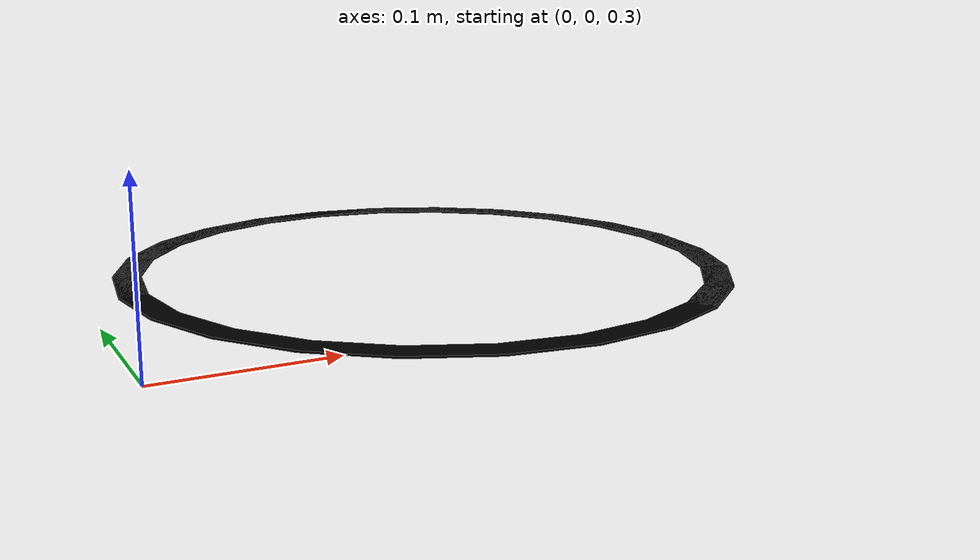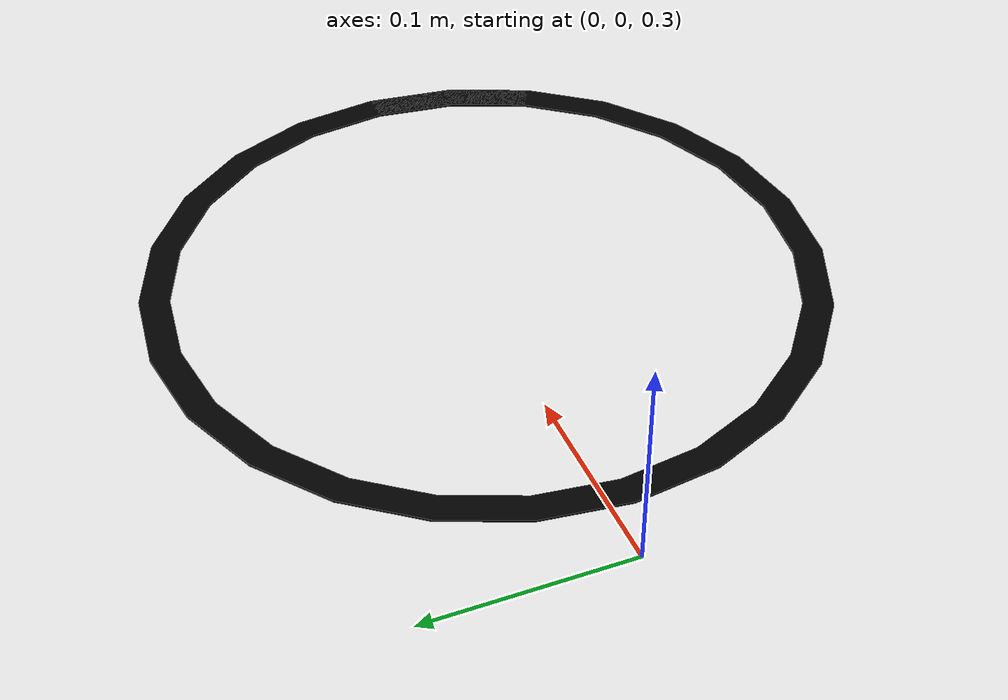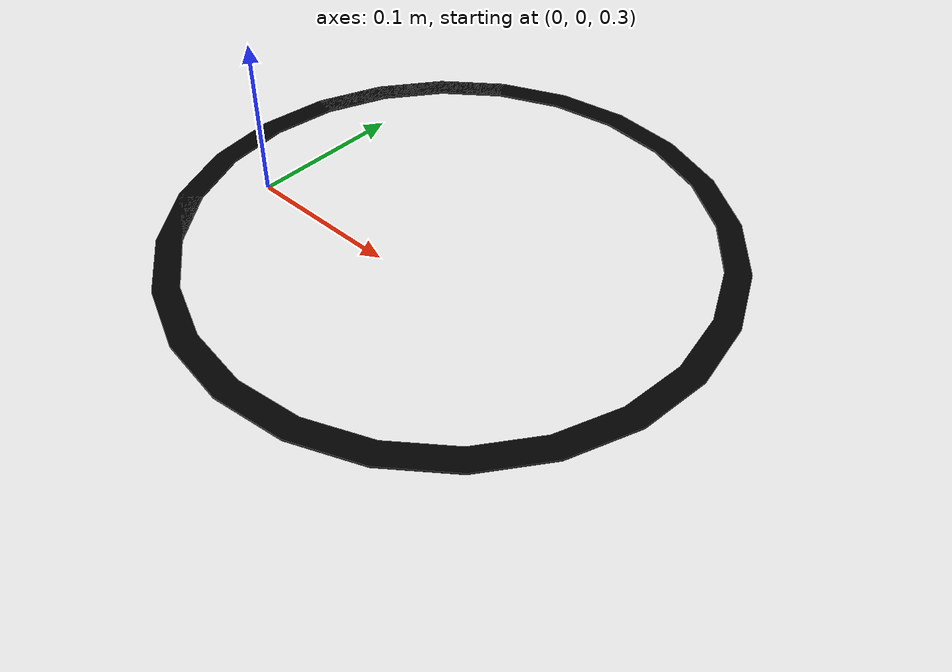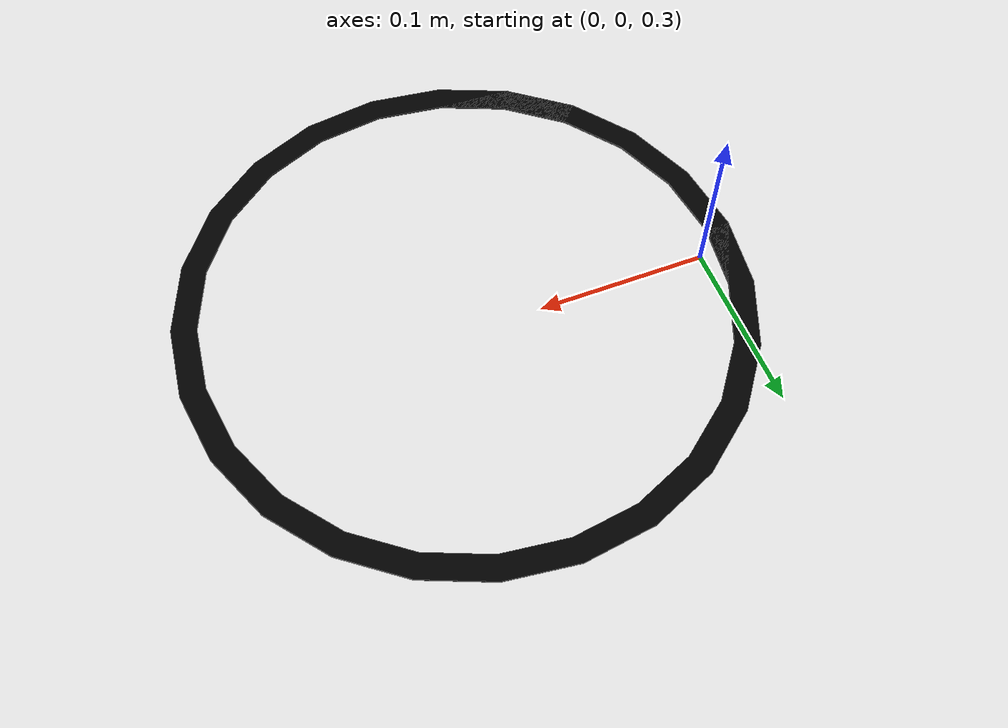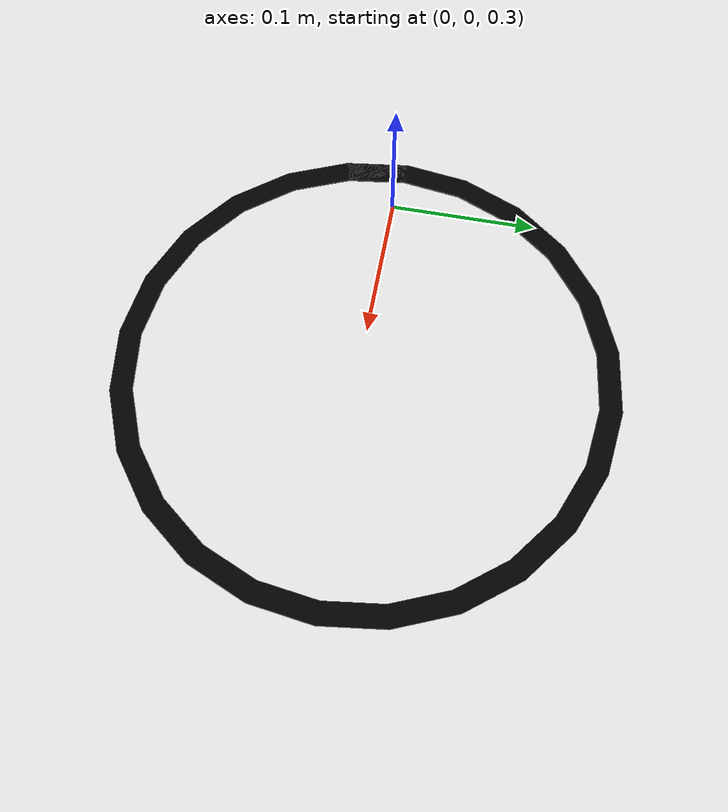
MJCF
<mujoco model="original-16">
  <default>
    <default class="visual">
      <geom group="2" type="mesh" contype="0" conaffinity="0"/>
    </default>
    <default class="collision">
      <geom group="3" type="mesh"/>
    </default>
  </default>
  <asset>
    <material name="material_0_0" specular="0.06666666666666667" shininess="0.03" rgba="0.13333333333333333 0.13333333333333333 0.13333333333333333 1"/>
    <material name="material_1_0" specular="0.06666666666666667" shininess="0.03" rgba="0 0 0 1"/>
    <mesh file="original-16_0.obj"/>
    <mesh file="original-16_1.obj"/>
  </asset>
  <worldbody>
    <body name="original-16">
      <geom mesh="original-16_0" material="material_1_0" class="visual"/>
      <geom mesh="original-16_1" material="material_0_0" class="visual"/>
      <geom mesh="original-16_0" class="collision"/>
      <geom mesh="original-16_1" class="collision"/>
    </body>
  </worldbody>
</mujoco>
